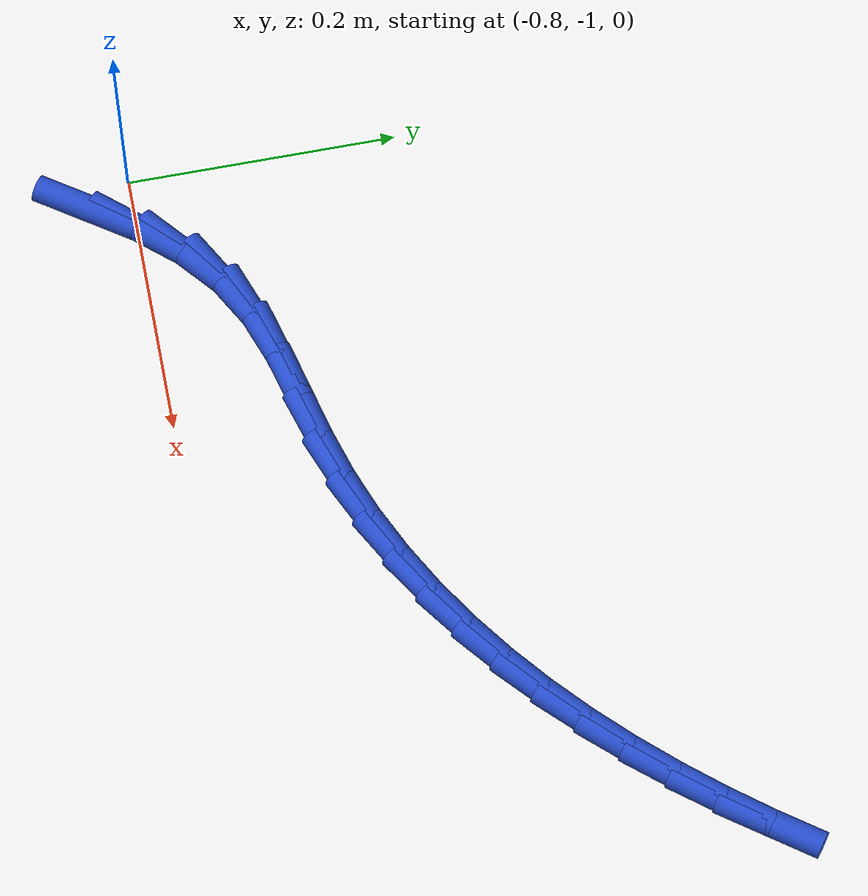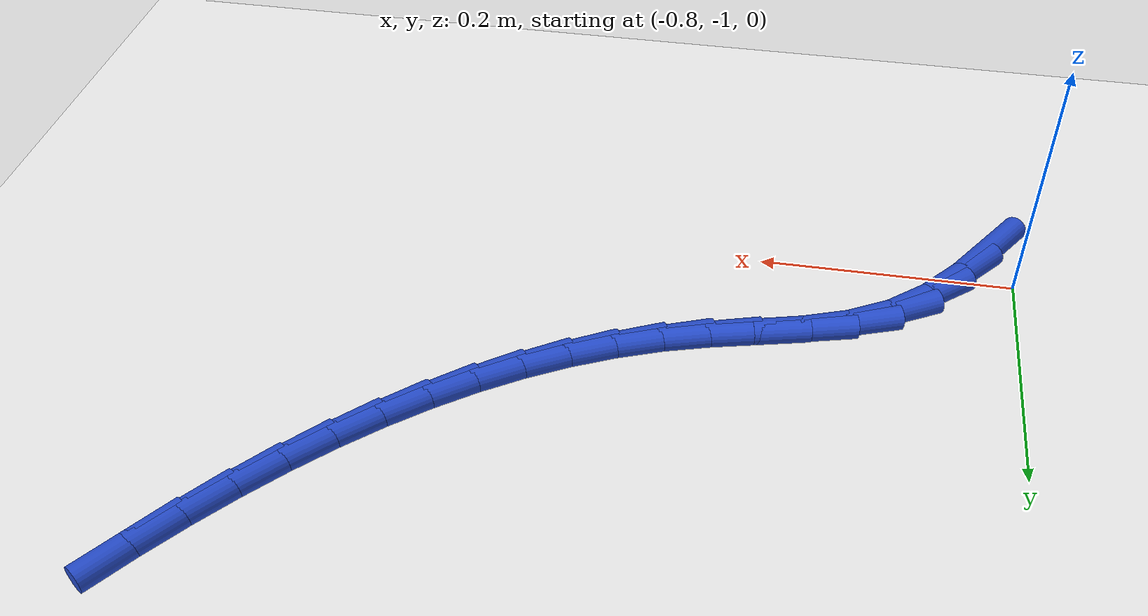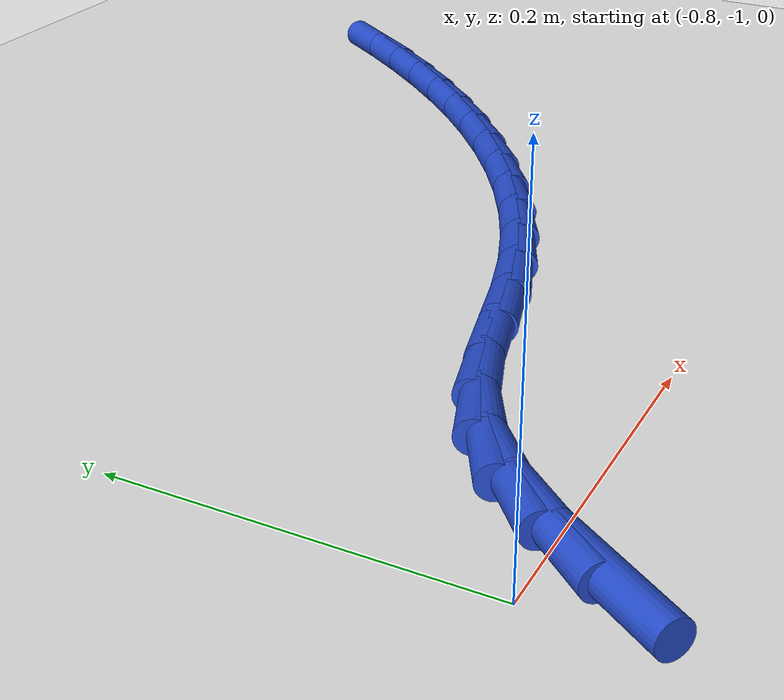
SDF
<sdf version="1.6">
 <world name="default">
  <model name="ground_plane">
   <static>1</static>
   <link name="link">
    <collision name="collision">
     <geometry><plane><normal>0 0 1</normal><size>100 100</size></plane></geometry>
     <surface><friction><ode><mu>100</mu><mu2>50</mu2></ode></friction></surface>
    </collision>
    <visual name="visual">
     <cast_shadows>0</cast_shadows>
     <geometry><plane><normal>0 0 1</normal><size>100 100</size></plane></geometry>
     <material>
      <script><uri>file://media/materials/scripts/gazebo.material</uri><name>Gazebo/WhiteGlow</name></script>
     </material>
    </visual>
   </link>
  </model>
  <model name="line">
   <link name="link_202">
    <pose>-0.7809742953577488 -1.033546588481806 0.01 0 1.57 0.9751328395613489</pose>
    <collision name="collision">
     <geometry><cylinder><radius>0.01</radius><length>0.08</length></cylinder></geometry>
    </collision>
    <visual name="visual">
     <material>
      <script><name>Gazebo/Blue</name><uri>file://media/materials/scripts/gazebo.material</uri></script>
     </material>
     <geometry><cylinder><radius>0.01</radius><length>0.08</length></cylinder></geometry>
    </visual>
   </link>
   <link name="link_203">
    <pose>-0.7577864295715797 -0.9993355704563267 0.01 0 1.57 0.8631871714794312</pose>
    <collision name="collision">
     <geometry><cylinder><radius>0.01</radius><length>0.08</length></cylinder></geometry>
    </collision>
    <visual name="visual">
     <material>
      <script><name>Gazebo/Blue</name><uri>file://media/materials/scripts/gazebo.material</uri></script>
     </material>
     <geometry><cylinder><radius>0.01</radius><length>0.08</length></cylinder></geometry>
    </visual>
   </link>
   <link name="link_204">
    <pose>-0.7323175863947068 -0.9695606833122636 0.01 0 1.57 0.7078740566432165</pose>
    <collision name="collision">
     <geometry><cylinder><radius>0.01</radius><length>0.08</length></cylinder></geometry>
    </collision>
    <visual name="visual">
     <material>
      <script><name>Gazebo/Blue</name><uri>file://media/materials/scripts/gazebo.material</uri></script>
     </material>
     <geometry><cylinder><radius>0.01</radius><length>0.08</length></cylinder></geometry>
    </visual>
   </link>
   <link name="link_205">
    <pose>-0.7041399324110618 -0.9454451527798394 0.01 0 1.57 0.5114679045774135</pose>
    <collision name="collision">
     <geometry><cylinder><radius>0.01</radius><length>0.08</length></cylinder></geometry>
    </collision>
    <visual name="visual">
     <material>
      <script><name>Gazebo/Blue</name><uri>file://media/materials/scripts/gazebo.material</uri></script>
     </material>
     <geometry><cylinder><radius>0.01</radius><length>0.08</length></cylinder></geometry>
    </visual>
   </link>
   <link name="link_206">
    <pose>-0.6729401944683937 -0.9279331302915856 0.01 0 1.57 0.34834592658041524</pose>
    <collision name="collision">
     <geometry><cylinder><radius>0.01</radius><length>0.08</length></cylinder></geometry>
    </collision>
    <visual name="visual">
     <material>
      <script><name>Gazebo/Blue</name><uri>file://media/materials/scripts/gazebo.material</uri></script>
     </material>
     <geometry><cylinder><radius>0.01</radius><length>0.08</length></cylinder></geometry>
    </visual>
   </link>
   <link name="link_207">
    <pose>-0.639325802410465 -0.91572589061904 0.01 0 1.57 0.2593777103094461</pose>
    <collision name="collision">
     <geometry><cylinder><radius>0.01</radius><length>0.08</length></cylinder></geometry>
    </collision>
    <visual name="visual">
     <material>
      <script><name>Gazebo/Blue</name><uri>file://media/materials/scripts/gazebo.material</uri></script>
     </material>
     <geometry><cylinder><radius>0.01</radius><length>0.08</length></cylinder></geometry>
    </visual>
   </link>
   <link name="link_208">
    <pose>-0.6043477083088565 -0.9064442671126611 0.01 0 1.57 0.2428466547991136</pose>
    <collision name="collision">
     <geometry><cylinder><radius>0.01</radius><length>0.08</length></cylinder></geometry>
    </collision>
    <visual name="visual">
     <material>
      <script><name>Gazebo/Blue</name><uri>file://media/materials/scripts/gazebo.material</uri></script>
     </material>
     <geometry><cylinder><radius>0.01</radius><length>0.08</length></cylinder></geometry>
    </visual>
   </link>
   <link name="link_209">
    <pose>-0.5690597096944595 -0.8977021614475491 0.01 0 1.57 0.29346079568568445</pose>
    <collision name="collision">
     <geometry><cylinder><radius>0.01</radius><length>0.08</length></cylinder></geometry>
    </collision>
    <visual name="visual">
     <material>
      <script><name>Gazebo/Blue</name><uri>file://media/materials/scripts/gazebo.material</uri></script>
     </material>
     <geometry><cylinder><radius>0.01</radius><length>0.08</length></cylinder></geometry>
    </visual>
   </link>
   <link name="link_210">
    <pose>-0.534460069613794 -0.8872466457417715 0.01 0 1.57 0.3685440568153432</pose>
    <collision name="collision">
     <geometry><cylinder><radius>0.01</radius><length>0.08</length></cylinder></geometry>
    </collision>
    <visual name="visual">
     <material>
      <script><name>Gazebo/Blue</name><uri>file://media/materials/scripts/gazebo.material</uri></script>
     </material>
     <geometry><cylinder><radius>0.01</radius><length>0.08</length></cylinder></geometry>
    </visual>
   </link>
   <link name="link_211">
    <pose>-0.5009324314576262 -0.8742986362076788 0.01 0 1.57 0.44060477205268694</pose>
    <collision name="collision">
     <geometry><cylinder><radius>0.01</radius><length>0.08</length></cylinder></geometry>
    </collision>
    <visual name="visual">
     <material>
      <script><name>Gazebo/Blue</name><uri>file://media/materials/scripts/gazebo.material</uri></script>
     </material>
     <geometry><cylinder><radius>0.01</radius><length>0.08</length></cylinder></geometry>
    </visual>
   </link>
   <link name="link_212">
    <pose>-0.46847813622405965 -0.8589958015864073 0.01 0 1.57 0.5087976900301555</pose>
    <collision name="collision">
     <geometry><cylinder><radius>0.01</radius><length>0.08</length></cylinder></geometry>
    </collision>
    <visual name="visual">
     <material>
      <script><name>Gazebo/Blue</name><uri>file://media/materials/scripts/gazebo.material</uri></script>
     </material>
     <geometry><cylinder><radius>0.01</radius><length>0.08</length></cylinder></geometry>
    </visual>
   </link>
   <link name="link_213">
    <pose>-0.43709276291705207 -0.8414896277513051 0.01 0 1.57 0.5728770403341762</pose>
    <collision name="collision">
     <geometry><cylinder><radius>0.01</radius><length>0.08</length></cylinder></geometry>
    </collision>
    <visual name="visual">
     <material>
      <script><name>Gazebo/Blue</name><uri>file://media/materials/scripts/gazebo.material</uri></script>
     </material>
     <geometry><cylinder><radius>0.01</radius><length>0.08</length></cylinder></geometry>
    </visual>
   </link>
   <link name="link_214">
    <pose>-0.40677189054056107 -0.8219316005757201 0.01 0 1.57 0.6327595065089587</pose>
    <collision name="collision">
     <geometry><cylinder><radius>0.01</radius><length>0.08</length></cylinder></geometry>
    </collision>
    <visual name="visual">
     <material>
      <script><name>Gazebo/Blue</name><uri>file://media/materials/scripts/gazebo.material</uri></script>
     </material>
     <geometry><cylinder><radius>0.01</radius><length>0.08</length></cylinder></geometry>
    </visual>
   </link>
   <link name="link_215">
    <pose>-0.3775110980985434 -0.8004732059329995 0.01 0 1.57 0.6884915467058599</pose>
    <collision name="collision">
     <geometry><cylinder><radius>0.01</radius><length>0.08</length></cylinder></geometry>
    </collision>
    <visual name="visual">
     <material>
      <script><name>Gazebo/Blue</name><uri>file://media/materials/scripts/gazebo.material</uri></script>
     </material>
     <geometry><cylinder><radius>0.01</radius><length>0.08</length></cylinder></geometry>
    </visual>
   </link>
   <link name="link_216">
    <pose>-0.3493059645949585 -0.7772659296964927 0.01 0 1.57 0.7402155327838835</pose>
    <collision name="collision">
     <geometry><cylinder><radius>0.01</radius><length>0.08</length></cylinder></geometry>
    </collision>
    <visual name="visual">
     <material>
      <script><name>Gazebo/Blue</name><uri>file://media/materials/scripts/gazebo.material</uri></script>
     </material>
     <geometry><cylinder><radius>0.01</radius><length>0.08</length></cylinder></geometry>
    </visual>
   </link>
   <link name="link_217">
    <pose>-0.322152069033763 -0.752461257739547 0.01 0 1.57 0.7881389816216409</pose>
    <collision name="collision">
     <geometry><cylinder><radius>0.01</radius><length>0.08</length></cylinder></geometry>
    </collision>
    <visual name="visual">
     <material>
      <script><name>Gazebo/Blue</name><uri>file://media/materials/scripts/gazebo.material</uri></script>
     </material>
     <geometry><cylinder><radius>0.01</radius><length>0.08</length></cylinder></geometry>
    </visual>
   </link>
   <link name="link_218">
    <pose>-0.29604499041891474 -0.7262106759355104 0.01 0 1.57 0.8325090272767726</pose>
    <collision name="collision">
     <geometry><cylinder><radius>0.01</radius><length>0.08</length></cylinder></geometry>
    </collision>
    <visual name="visual">
     <material>
      <script><name>Gazebo/Blue</name><uri>file://media/materials/scripts/gazebo.material</uri></script>
     </material>
     <geometry><cylinder><radius>0.01</radius><length>0.08</length></cylinder></geometry>
    </visual>
   </link>
   <link name="link_219">
    <pose>-0.270980307754371 -0.6986656701577305 0.01 0 1.57 0.8735927031399876</pose>
    <collision name="collision">
     <geometry><cylinder><radius>0.01</radius><length>0.08</length></cylinder></geometry>
    </collision>
    <visual name="visual">
     <material>
      <script><name>Gazebo/Blue</name><uri>file://media/materials/scripts/gazebo.material</uri></script>
     </material>
     <geometry><cylinder><radius>0.01</radius><length>0.08</length></cylinder></geometry>
    </visual>
   </link>
   <link name="link_220">
    <pose>-0.2469536000440897 -0.6699777262795557 0.01 0 1.57 0.9116626456170855</pose>
    <collision name="collision">
     <geometry><cylinder><radius>0.01</radius><length>0.08</length></cylinder></geometry>
    </collision>
    <visual name="visual">
     <material>
      <script><name>Gazebo/Blue</name><uri>file://media/materials/scripts/gazebo.material</uri></script>
     </material>
     <geometry><cylinder><radius>0.01</radius><length>0.08</length></cylinder></geometry>
    </visual>
   </link>
   <link name="link_221">
    <pose>-0.22396044629202838 -0.6402983301743337 0.01 0 1.57 0.9469873778573968</pose>
    <collision name="collision">
     <geometry><cylinder><radius>0.01</radius><length>0.08</length></cylinder></geometry>
    </collision>
    <visual name="visual">
     <material>
      <script><name>Gazebo/Blue</name><uri>file://media/materials/scripts/gazebo.material</uri></script>
     </material>
     <geometry><cylinder><radius>0.01</radius><length>0.08</length></cylinder></geometry>
    </visual>
   </link>
  </model>
 </world>
</sdf>
